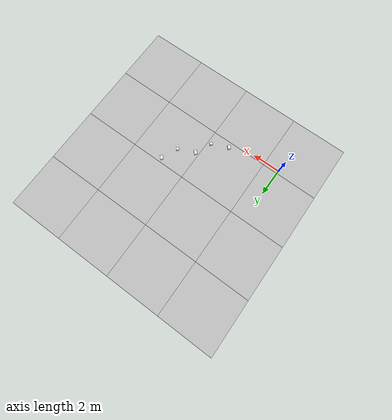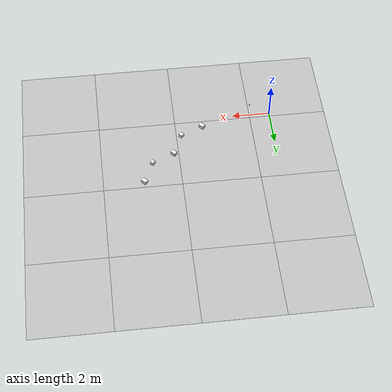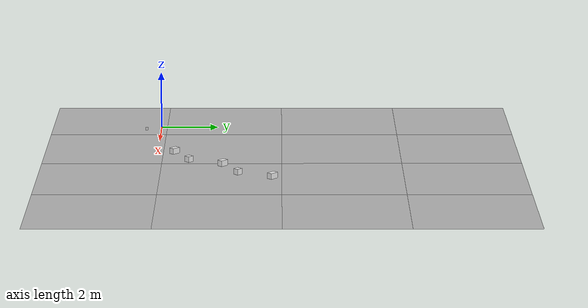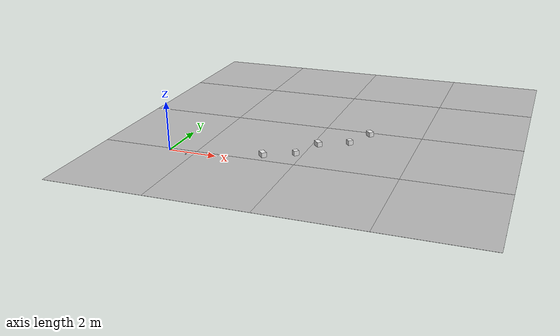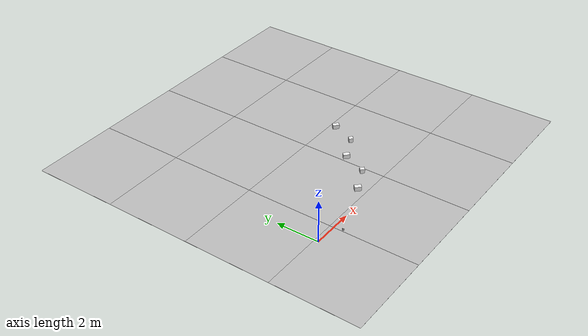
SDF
<sdf version='1.6'><world name='default'>
    <light name='sun_light' type='directional'>
      <pose frame=''>0 0 10 0 -0 0</pose>
      <diffuse>0.5 0.5 0.5 1</diffuse>
      <specular>0.1 0.1 0.1 1</specular>
      <direction>0.1 0.1 -0.9</direction>
      <attenuation>
        <range>20</range>
        <constant>0.5</constant>
        <linear>0.01</linear>
        <quadratic>0.001</quadratic>
      </attenuation>
      <cast_shadows>1</cast_shadows>
    </light>

    <model name='Tile/0-0'>
      <static>1</static>
      <link name='link'>
        <collision name='collision'>
          <geometry>
            <plane>
              <normal>0 0 1</normal>
              <size>4.096 4.096</size>
            </plane>
          </geometry>
          <surface>
            <friction>
              <ode>
                <mu>100</mu>
                <mu2>50</mu2>
              </ode>
              <torsional>
                <ode/>
              </torsional>
            </friction>
            <contact>
              <ode/>
            </contact>
            <bounce/>
          </surface>
          <max_contacts>10</max_contacts>
        </collision>
        <visual name='visual'>
          <cast_shadows>0</cast_shadows>
          <geometry>
            <plane>
              <normal>0 0 1</normal>
              <size>4.096 4.096</size>
            </plane>
          </geometry>
          <material>
            <script>
              <uri>file://materials/scripts</uri>
              <uri>file://materials/textures</uri>
              <name>Tile/59aa48be58bd1d39c4f8729740ab94a3ee72491696f29f5efb5f4e6bfd79c256</name>
            </script>
          </material>
        </visual>
        <self_collide>0</self_collide>
        <enable_wind>0</enable_wind>
        <kinematic>0</kinematic>
      </link>
      <pose frame=''>-0.952 -1.8519999999999999 0 0 -0 0</pose>
    </model>

    <model name='Tile/0-1'>
      <static>1</static>
      <link name='link'>
        <collision name='collision'>
          <geometry>
            <plane>
              <normal>0 0 1</normal>
              <size>4.096 4.096</size>
            </plane>
          </geometry>
          <surface>
            <friction>
              <ode>
                <mu>100</mu>
                <mu2>50</mu2>
              </ode>
              <torsional>
                <ode/>
              </torsional>
            </friction>
            <contact>
              <ode/>
            </contact>
            <bounce/>
          </surface>
          <max_contacts>10</max_contacts>
        </collision>
        <visual name='visual'>
          <cast_shadows>0</cast_shadows>
          <geometry>
            <plane>
              <normal>0 0 1</normal>
              <size>4.096 4.096</size>
            </plane>
          </geometry>
          <material>
            <script>
              <uri>file://materials/scripts</uri>
              <uri>file://materials/textures</uri>
              <name>Tile/cb742ec834ce0db14fa5edbd5a9bf9a3149f1d3629eb5aba388d11a938615e9e</name>
            </script>
          </material>
        </visual>
        <self_collide>0</self_collide>
        <enable_wind>0</enable_wind>
        <kinematic>0</kinematic>
      </link>
      <pose frame=''>-0.952 2.244 0 0 -0 0</pose>
    </model>

    <model name='Tile/0-2'>
      <static>1</static>
      <link name='link'>
        <collision name='collision'>
          <geometry>
            <plane>
              <normal>0 0 1</normal>
              <size>4.096 4.096</size>
            </plane>
          </geometry>
          <surface>
            <friction>
              <ode>
                <mu>100</mu>
                <mu2>50</mu2>
              </ode>
              <torsional>
                <ode/>
              </torsional>
            </friction>
            <contact>
              <ode/>
            </contact>
            <bounce/>
          </surface>
          <max_contacts>10</max_contacts>
        </collision>
        <visual name='visual'>
          <cast_shadows>0</cast_shadows>
          <geometry>
            <plane>
              <normal>0 0 1</normal>
              <size>4.096 4.096</size>
            </plane>
          </geometry>
          <material>
            <script>
              <uri>file://materials/scripts</uri>
              <uri>file://materials/textures</uri>
              <name>Tile/5eab350b8220ac9944dbdfa4ac3288c7c17e24c3bf5df0dfcf6173d64dae00a1</name>
            </script>
          </material>
        </visual>
        <self_collide>0</self_collide>
        <enable_wind>0</enable_wind>
        <kinematic>0</kinematic>
      </link>
      <pose frame=''>-0.952 6.34 0 0 -0 0</pose>
    </model>

    <model name='Tile/0-3'>
      <static>1</static>
      <link name='link'>
        <collision name='collision'>
          <geometry>
            <plane>
              <normal>0 0 1</normal>
              <size>4.096 4.096</size>
            </plane>
          </geometry>
          <surface>
            <friction>
              <ode>
                <mu>100</mu>
                <mu2>50</mu2>
              </ode>
              <torsional>
                <ode/>
              </torsional>
            </friction>
            <contact>
              <ode/>
            </contact>
            <bounce/>
          </surface>
          <max_contacts>10</max_contacts>
        </collision>
        <visual name='visual'>
          <cast_shadows>0</cast_shadows>
          <geometry>
            <plane>
              <normal>0 0 1</normal>
              <size>4.096 4.096</size>
            </plane>
          </geometry>
          <material>
            <script>
              <uri>file://materials/scripts</uri>
              <uri>file://materials/textures</uri>
              <name>Tile/5eab350b8220ac9944dbdfa4ac3288c7c17e24c3bf5df0dfcf6173d64dae00a1</name>
            </script>
          </material>
        </visual>
        <self_collide>0</self_collide>
        <enable_wind>0</enable_wind>
        <kinematic>0</kinematic>
      </link>
      <pose frame=''>-0.952 10.436 0 0 -0 0</pose>
    </model>

    <model name='Tile/1-0'>
      <static>1</static>
      <link name='link'>
        <collision name='collision'>
          <geometry>
            <plane>
              <normal>0 0 1</normal>
              <size>4.096 4.096</size>
            </plane>
          </geometry>
          <surface>
            <friction>
              <ode>
                <mu>100</mu>
                <mu2>50</mu2>
              </ode>
              <torsional>
                <ode/>
              </torsional>
            </friction>
            <contact>
              <ode/>
            </contact>
            <bounce/>
          </surface>
          <max_contacts>10</max_contacts>
        </collision>
        <visual name='visual'>
          <cast_shadows>0</cast_shadows>
          <geometry>
            <plane>
              <normal>0 0 1</normal>
              <size>4.096 4.096</size>
            </plane>
          </geometry>
          <material>
            <script>
              <uri>file://materials/scripts</uri>
              <uri>file://materials/textures</uri>
              <name>Tile/d52fb2dfefe25faa7041ca0b0529607f41bb761d84e17d3321bb513bb9fda82a</name>
            </script>
          </material>
        </visual>
        <self_collide>0</self_collide>
        <enable_wind>0</enable_wind>
        <kinematic>0</kinematic>
      </link>
      <pose frame=''>3.144 -1.8519999999999999 0 0 -0 0</pose>
    </model>

    <model name='Tile/1-1'>
      <static>1</static>
      <link name='link'>
        <collision name='collision'>
          <geometry>
            <plane>
              <normal>0 0 1</normal>
              <size>4.096 4.096</size>
            </plane>
          </geometry>
          <surface>
            <friction>
              <ode>
                <mu>100</mu>
                <mu2>50</mu2>
              </ode>
              <torsional>
                <ode/>
              </torsional>
            </friction>
            <contact>
              <ode/>
            </contact>
            <bounce/>
          </surface>
          <max_contacts>10</max_contacts>
        </collision>
        <visual name='visual'>
          <cast_shadows>0</cast_shadows>
          <geometry>
            <plane>
              <normal>0 0 1</normal>
              <size>4.096 4.096</size>
            </plane>
          </geometry>
          <material>
            <script>
              <uri>file://materials/scripts</uri>
              <uri>file://materials/textures</uri>
              <name>Tile/de98d1a09f667081e1d869535762d2842a1a799d7bda29445a95b6bbfa693730</name>
            </script>
          </material>
        </visual>
        <self_collide>0</self_collide>
        <enable_wind>0</enable_wind>
        <kinematic>0</kinematic>
      </link>
      <pose frame=''>3.144 2.244 0 0 -0 0</pose>
    </model>

    <model name='Tile/1-2'>
      <static>1</static>
      <link name='link'>
        <collision name='collision'>
          <geometry>
            <plane>
              <normal>0 0 1</normal>
              <size>4.096 4.096</size>
            </plane>
          </geometry>
          <surface>
            <friction>
              <ode>
                <mu>100</mu>
                <mu2>50</mu2>
              </ode>
              <torsional>
                <ode/>
              </torsional>
            </friction>
            <contact>
              <ode/>
            </contact>
            <bounce/>
          </surface>
          <max_contacts>10</max_contacts>
        </collision>
        <visual name='visual'>
          <cast_shadows>0</cast_shadows>
          <geometry>
            <plane>
              <normal>0 0 1</normal>
              <size>4.096 4.096</size>
            </plane>
          </geometry>
          <material>
            <script>
              <uri>file://materials/scripts</uri>
              <uri>file://materials/textures</uri>
              <name>Tile/5eab350b8220ac9944dbdfa4ac3288c7c17e24c3bf5df0dfcf6173d64dae00a1</name>
            </script>
          </material>
        </visual>
        <self_collide>0</self_collide>
        <enable_wind>0</enable_wind>
        <kinematic>0</kinematic>
      </link>
      <pose frame=''>3.144 6.34 0 0 -0 0</pose>
    </model>

    <model name='Tile/1-3'>
      <static>1</static>
      <link name='link'>
        <collision name='collision'>
          <geometry>
            <plane>
              <normal>0 0 1</normal>
              <size>4.096 4.096</size>
            </plane>
          </geometry>
          <surface>
            <friction>
              <ode>
                <mu>100</mu>
                <mu2>50</mu2>
              </ode>
              <torsional>
                <ode/>
              </torsional>
            </friction>
            <contact>
              <ode/>
            </contact>
            <bounce/>
          </surface>
          <max_contacts>10</max_contacts>
        </collision>
        <visual name='visual'>
          <cast_shadows>0</cast_shadows>
          <geometry>
            <plane>
              <normal>0 0 1</normal>
              <size>4.096 4.096</size>
            </plane>
          </geometry>
          <material>
            <script>
              <uri>file://materials/scripts</uri>
              <uri>file://materials/textures</uri>
              <name>Tile/5eab350b8220ac9944dbdfa4ac3288c7c17e24c3bf5df0dfcf6173d64dae00a1</name>
            </script>
          </material>
        </visual>
        <self_collide>0</self_collide>
        <enable_wind>0</enable_wind>
        <kinematic>0</kinematic>
      </link>
      <pose frame=''>3.144 10.436 0 0 -0 0</pose>
    </model>

    <model name='Tile/2-0'>
      <static>1</static>
      <link name='link'>
        <collision name='collision'>
          <geometry>
            <plane>
              <normal>0 0 1</normal>
              <size>4.096 4.096</size>
            </plane>
          </geometry>
          <surface>
            <friction>
              <ode>
                <mu>100</mu>
                <mu2>50</mu2>
              </ode>
              <torsional>
                <ode/>
              </torsional>
            </friction>
            <contact>
              <ode/>
            </contact>
            <bounce/>
          </surface>
          <max_contacts>10</max_contacts>
        </collision>
        <visual name='visual'>
          <cast_shadows>0</cast_shadows>
          <geometry>
            <plane>
              <normal>0 0 1</normal>
              <size>4.096 4.096</size>
            </plane>
          </geometry>
          <material>
            <script>
              <uri>file://materials/scripts</uri>
              <uri>file://materials/textures</uri>
              <name>Tile/5eab350b8220ac9944dbdfa4ac3288c7c17e24c3bf5df0dfcf6173d64dae00a1</name>
            </script>
          </material>
        </visual>
        <self_collide>0</self_collide>
        <enable_wind>0</enable_wind>
        <kinematic>0</kinematic>
      </link>
      <pose frame=''>7.24 -1.8519999999999999 0 0 -0 0</pose>
    </model>

    <model name='Tile/2-1'>
      <static>1</static>
      <link name='link'>
        <collision name='collision'>
          <geometry>
            <plane>
              <normal>0 0 1</normal>
              <size>4.096 4.096</size>
            </plane>
          </geometry>
          <surface>
            <friction>
              <ode>
                <mu>100</mu>
                <mu2>50</mu2>
              </ode>
              <torsional>
                <ode/>
              </torsional>
            </friction>
            <contact>
              <ode/>
            </contact>
            <bounce/>
          </surface>
          <max_contacts>10</max_contacts>
        </collision>
        <visual name='visual'>
          <cast_shadows>0</cast_shadows>
          <geometry>
            <plane>
              <normal>0 0 1</normal>
              <size>4.096 4.096</size>
            </plane>
          </geometry>
          <material>
            <script>
              <uri>file://materials/scripts</uri>
              <uri>file://materials/textures</uri>
              <name>Tile/e125be44de15e7b9c890a3de40f16afcb0b40d6da98f8efc7d9f5aa35b8a4d4f</name>
            </script>
          </material>
        </visual>
        <self_collide>0</self_collide>
        <enable_wind>0</enable_wind>
        <kinematic>0</kinematic>
      </link>
      <pose frame=''>7.24 2.244 0 0 -0 0</pose>
    </model>

    <model name='Tile/2-2'>
      <static>1</static>
      <link name='link'>
        <collision name='collision'>
          <geometry>
            <plane>
              <normal>0 0 1</normal>
              <size>4.096 4.096</size>
            </plane>
          </geometry>
          <surface>
            <friction>
              <ode>
                <mu>100</mu>
                <mu2>50</mu2>
              </ode>
              <torsional>
                <ode/>
              </torsional>
            </friction>
            <contact>
              <ode/>
            </contact>
            <bounce/>
          </surface>
          <max_contacts>10</max_contacts>
        </collision>
        <visual name='visual'>
          <cast_shadows>0</cast_shadows>
          <geometry>
            <plane>
              <normal>0 0 1</normal>
              <size>4.096 4.096</size>
            </plane>
          </geometry>
          <material>
            <script>
              <uri>file://materials/scripts</uri>
              <uri>file://materials/textures</uri>
              <name>Tile/120cdca48ef59ecd022b3abc1fb6169df7b86a7542cf1153303e9a9d9acf6184</name>
            </script>
          </material>
        </visual>
        <self_collide>0</self_collide>
        <enable_wind>0</enable_wind>
        <kinematic>0</kinematic>
      </link>
      <pose frame=''>7.24 6.34 0 0 -0 0</pose>
    </model>

    <model name='Tile/2-3'>
      <static>1</static>
      <link name='link'>
        <collision name='collision'>
          <geometry>
            <plane>
              <normal>0 0 1</normal>
              <size>4.096 4.096</size>
            </plane>
          </geometry>
          <surface>
            <friction>
              <ode>
                <mu>100</mu>
                <mu2>50</mu2>
              </ode>
              <torsional>
                <ode/>
              </torsional>
            </friction>
            <contact>
              <ode/>
            </contact>
            <bounce/>
          </surface>
          <max_contacts>10</max_contacts>
        </collision>
        <visual name='visual'>
          <cast_shadows>0</cast_shadows>
          <geometry>
            <plane>
              <normal>0 0 1</normal>
              <size>4.096 4.096</size>
            </plane>
          </geometry>
          <material>
            <script>
              <uri>file://materials/scripts</uri>
              <uri>file://materials/textures</uri>
              <name>Tile/5eab350b8220ac9944dbdfa4ac3288c7c17e24c3bf5df0dfcf6173d64dae00a1</name>
            </script>
          </material>
        </visual>
        <self_collide>0</self_collide>
        <enable_wind>0</enable_wind>
        <kinematic>0</kinematic>
      </link>
      <pose frame=''>7.24 10.436 0 0 -0 0</pose>
    </model>

    <model name='Tile/3-0'>
      <static>1</static>
      <link name='link'>
        <collision name='collision'>
          <geometry>
            <plane>
              <normal>0 0 1</normal>
              <size>4.096 4.096</size>
            </plane>
          </geometry>
          <surface>
            <friction>
              <ode>
                <mu>100</mu>
                <mu2>50</mu2>
              </ode>
              <torsional>
                <ode/>
              </torsional>
            </friction>
            <contact>
              <ode/>
            </contact>
            <bounce/>
          </surface>
          <max_contacts>10</max_contacts>
        </collision>
        <visual name='visual'>
          <cast_shadows>0</cast_shadows>
          <geometry>
            <plane>
              <normal>0 0 1</normal>
              <size>4.096 4.096</size>
            </plane>
          </geometry>
          <material>
            <script>
              <uri>file://materials/scripts</uri>
              <uri>file://materials/textures</uri>
              <name>Tile/5eab350b8220ac9944dbdfa4ac3288c7c17e24c3bf5df0dfcf6173d64dae00a1</name>
            </script>
          </material>
        </visual>
        <self_collide>0</self_collide>
        <enable_wind>0</enable_wind>
        <kinematic>0</kinematic>
      </link>
      <pose frame=''>11.336 -1.8519999999999999 0 0 -0 0</pose>
    </model>

    <model name='Tile/3-1'>
      <static>1</static>
      <link name='link'>
        <collision name='collision'>
          <geometry>
            <plane>
              <normal>0 0 1</normal>
              <size>4.096 4.096</size>
            </plane>
          </geometry>
          <surface>
            <friction>
              <ode>
                <mu>100</mu>
                <mu2>50</mu2>
              </ode>
              <torsional>
                <ode/>
              </torsional>
            </friction>
            <contact>
              <ode/>
            </contact>
            <bounce/>
          </surface>
          <max_contacts>10</max_contacts>
        </collision>
        <visual name='visual'>
          <cast_shadows>0</cast_shadows>
          <geometry>
            <plane>
              <normal>0 0 1</normal>
              <size>4.096 4.096</size>
            </plane>
          </geometry>
          <material>
            <script>
              <uri>file://materials/scripts</uri>
              <uri>file://materials/textures</uri>
              <name>Tile/5eab350b8220ac9944dbdfa4ac3288c7c17e24c3bf5df0dfcf6173d64dae00a1</name>
            </script>
          </material>
        </visual>
        <self_collide>0</self_collide>
        <enable_wind>0</enable_wind>
        <kinematic>0</kinematic>
      </link>
      <pose frame=''>11.336 2.244 0 0 -0 0</pose>
    </model>

    <model name='Tile/3-2'>
      <static>1</static>
      <link name='link'>
        <collision name='collision'>
          <geometry>
            <plane>
              <normal>0 0 1</normal>
              <size>4.096 4.096</size>
            </plane>
          </geometry>
          <surface>
            <friction>
              <ode>
                <mu>100</mu>
                <mu2>50</mu2>
              </ode>
              <torsional>
                <ode/>
              </torsional>
            </friction>
            <contact>
              <ode/>
            </contact>
            <bounce/>
          </surface>
          <max_contacts>10</max_contacts>
        </collision>
        <visual name='visual'>
          <cast_shadows>0</cast_shadows>
          <geometry>
            <plane>
              <normal>0 0 1</normal>
              <size>4.096 4.096</size>
            </plane>
          </geometry>
          <material>
            <script>
              <uri>file://materials/scripts</uri>
              <uri>file://materials/textures</uri>
              <name>Tile/5eab350b8220ac9944dbdfa4ac3288c7c17e24c3bf5df0dfcf6173d64dae00a1</name>
            </script>
          </material>
        </visual>
        <self_collide>0</self_collide>
        <enable_wind>0</enable_wind>
        <kinematic>0</kinematic>
      </link>
      <pose frame=''>11.336 6.34 0 0 -0 0</pose>
    </model>

    <model name='Tile/3-3'>
      <static>1</static>
      <link name='link'>
        <collision name='collision'>
          <geometry>
            <plane>
              <normal>0 0 1</normal>
              <size>4.096 4.096</size>
            </plane>
          </geometry>
          <surface>
            <friction>
              <ode>
                <mu>100</mu>
                <mu2>50</mu2>
              </ode>
              <torsional>
                <ode/>
              </torsional>
            </friction>
            <contact>
              <ode/>
            </contact>
            <bounce/>
          </surface>
          <max_contacts>10</max_contacts>
        </collision>
        <visual name='visual'>
          <cast_shadows>0</cast_shadows>
          <geometry>
            <plane>
              <normal>0 0 1</normal>
              <size>4.096 4.096</size>
            </plane>
          </geometry>
          <material>
            <script>
              <uri>file://materials/scripts</uri>
              <uri>file://materials/textures</uri>
              <name>Tile/5eab350b8220ac9944dbdfa4ac3288c7c17e24c3bf5df0dfcf6173d64dae00a1</name>
            </script>
          </material>
        </visual>
        <self_collide>0</self_collide>
        <enable_wind>0</enable_wind>
        <kinematic>0</kinematic>
      </link>
      <pose frame=''>11.336 10.436 0 0 -0 0</pose>
    </model>

    <model name='Obstacle/-18/0'>
      <pose frame=''>3.754594154601839 0.5868272016354705 0.1 0 0 0.7853981633974483</pose>
      <link name='link'>
        <inertial>
          <mass>10</mass>
          <inertia>
            <ixx>0.166667</ixx>
            <ixy>0</ixy>
            <ixz>0</ixz>
            <iyy>0.166667</iyy>
            <iyz>0</iyz>
            <izz>0.166667</izz>
          </inertia>
        </inertial>
        <collision name='collision'>
          <geometry>
            <box>
              <size>0.2 0.3 0.2</size>
            </box>
          </geometry>
          <max_contacts>10</max_contacts>
          <surface>
            <contact>
              <ode/>
            </contact>
            <bounce/>
            <friction>
              <torsional>
                <ode/>
              </torsional>
              <ode/>
            </friction>
          </surface>
        </collision>
        <visual name='visual'>
          <geometry>
            <box>
              <size>0.2 0.3 0.2</size>
            </box>
          </geometry>
          <material>
            <script>
              <name>Gazebo/White</name>
              <uri>file://media/materials/scripts/gazebo.material</uri>
            </script>
          </material>
        </visual>
        <self_collide>0</self_collide>
        <enable_wind>0</enable_wind>
        <kinematic>0</kinematic>
      </link>
    </model>

    <model name='Obstacle/-23/0'>
      <pose frame=''>4.921320343559643 1.117157287525381 0.1 0 0 0.7853981633974483</pose>
      <link name='link'>
        <inertial>
          <mass>10</mass>
          <inertia>
            <ixx>0.166667</ixx>
            <ixy>0</ixy>
            <ixz>0</ixz>
            <iyy>0.166667</iyy>
            <iyz>0</iyz>
            <izz>0.166667</izz>
          </inertia>
        </inertial>
        <collision name='collision'>
          <geometry>
            <box>
              <size>0.2 0.2 0.2</size>
            </box>
          </geometry>
          <max_contacts>10</max_contacts>
          <surface>
            <contact>
              <ode/>
            </contact>
            <bounce/>
            <friction>
              <torsional>
                <ode/>
              </torsional>
              <ode/>
            </friction>
          </surface>
        </collision>
        <visual name='visual'>
          <geometry>
            <box>
              <size>0.2 0.2 0.2</size>
            </box>
          </geometry>
          <material>
            <script>
              <name>Gazebo/White</name>
              <uri>file://media/materials/scripts/gazebo.material</uri>
            </script>
          </material>
        </visual>
        <self_collide>0</self_collide>
        <enable_wind>0</enable_wind>
        <kinematic>0</kinematic>
      </link>
    </model>

    <model name='Obstacle/-28/0'>
      <pose frame=''>5.451650429449553 2.2838834764831843 0.1 0 0 0.7853981633974483</pose>
      <link name='link'>
        <inertial>
          <mass>10</mass>
          <inertia>
            <ixx>0.166667</ixx>
            <ixy>0</ixy>
            <ixz>0</ixz>
            <iyy>0.166667</iyy>
            <iyz>0</iyz>
            <izz>0.166667</izz>
          </inertia>
        </inertial>
        <collision name='collision'>
          <geometry>
            <box>
              <size>0.2 0.3 0.2</size>
            </box>
          </geometry>
          <max_contacts>10</max_contacts>
          <surface>
            <contact>
              <ode/>
            </contact>
            <bounce/>
            <friction>
              <torsional>
                <ode/>
              </torsional>
              <ode/>
            </friction>
          </surface>
        </collision>
        <visual name='visual'>
          <geometry>
            <box>
              <size>0.2 0.3 0.2</size>
            </box>
          </geometry>
          <material>
            <script>
              <name>Gazebo/White</name>
              <uri>file://media/materials/scripts/gazebo.material</uri>
            </script>
          </material>
        </visual>
        <self_collide>0</self_collide>
        <enable_wind>0</enable_wind>
        <kinematic>0</kinematic>
      </link>
    </model>

    <model name='Obstacle/-33/0'>
      <pose frame=''>6.618376618407357 2.814213562373095 0.1 0 0 0.7853981633974483</pose>
      <link name='link'>
        <inertial>
          <mass>10</mass>
          <inertia>
            <ixx>0.166667</ixx>
            <ixy>0</ixy>
            <ixz>0</ixz>
            <iyy>0.166667</iyy>
            <iyz>0</iyz>
            <izz>0.166667</izz>
          </inertia>
        </inertial>
        <collision name='collision'>
          <geometry>
            <box>
              <size>0.2 0.2 0.2</size>
            </box>
          </geometry>
          <max_contacts>10</max_contacts>
          <surface>
            <contact>
              <ode/>
            </contact>
            <bounce/>
            <friction>
              <torsional>
                <ode/>
              </torsional>
              <ode/>
            </friction>
          </surface>
        </collision>
        <visual name='visual'>
          <geometry>
            <box>
              <size>0.2 0.2 0.2</size>
            </box>
          </geometry>
          <material>
            <script>
              <name>Gazebo/White</name>
              <uri>file://media/materials/scripts/gazebo.material</uri>
            </script>
          </material>
        </visual>
        <self_collide>0</self_collide>
        <enable_wind>0</enable_wind>
        <kinematic>0</kinematic>
      </link>
    </model>

    <model name='Obstacle/-38/0'>
      <pose frame=''>7.148706704297267 3.9809397513308986 0.1 0 0 0.7853981633974483</pose>
      <link name='link'>
        <inertial>
          <mass>10</mass>
          <inertia>
            <ixx>0.166667</ixx>
            <ixy>0</ixy>
            <ixz>0</ixz>
            <iyy>0.166667</iyy>
            <iyz>0</iyz>
            <izz>0.166667</izz>
          </inertia>
        </inertial>
        <collision name='collision'>
          <geometry>
            <box>
              <size>0.2 0.3 0.2</size>
            </box>
          </geometry>
          <max_contacts>10</max_contacts>
          <surface>
            <contact>
              <ode/>
            </contact>
            <bounce/>
            <friction>
              <torsional>
                <ode/>
              </torsional>
              <ode/>
            </friction>
          </surface>
        </collision>
        <visual name='visual'>
          <geometry>
            <box>
              <size>0.2 0.3 0.2</size>
            </box>
          </geometry>
          <material>
            <script>
              <name>Gazebo/White</name>
              <uri>file://media/materials/scripts/gazebo.material</uri>
            </script>
          </material>
        </visual>
        <self_collide>0</self_collide>
        <enable_wind>0</enable_wind>
        <kinematic>0</kinematic>
      </link>
    </model>

    <model name='Sign/-13'>
      <static>1</static>
      <link name='link'>
        <visual name='visual'>
          <cast_shadows>0</cast_shadows>
          <geometry>
            <plane>
              <normal>0 0 1</normal>
              <size>0.1 0.1</size>
            </plane>
          </geometry>
          <material>
            <script>
              <uri>file://materials/scripts</uri>
              <uri>file://materials/textures</uri>
              <name>Sign/stvo-306</name>
            </script>
          </material>
        </visual>
        <self_collide>0</self_collide>
        <enable_wind>0</enable_wind>
        <kinematic>0</kinematic>
      </link>
      <pose frame=''>0.9999999999999999 -0.49999999999999994 0.2 1.5707963267948966 0 4.71238898038469</pose>
    </model>
    </world></sdf>
